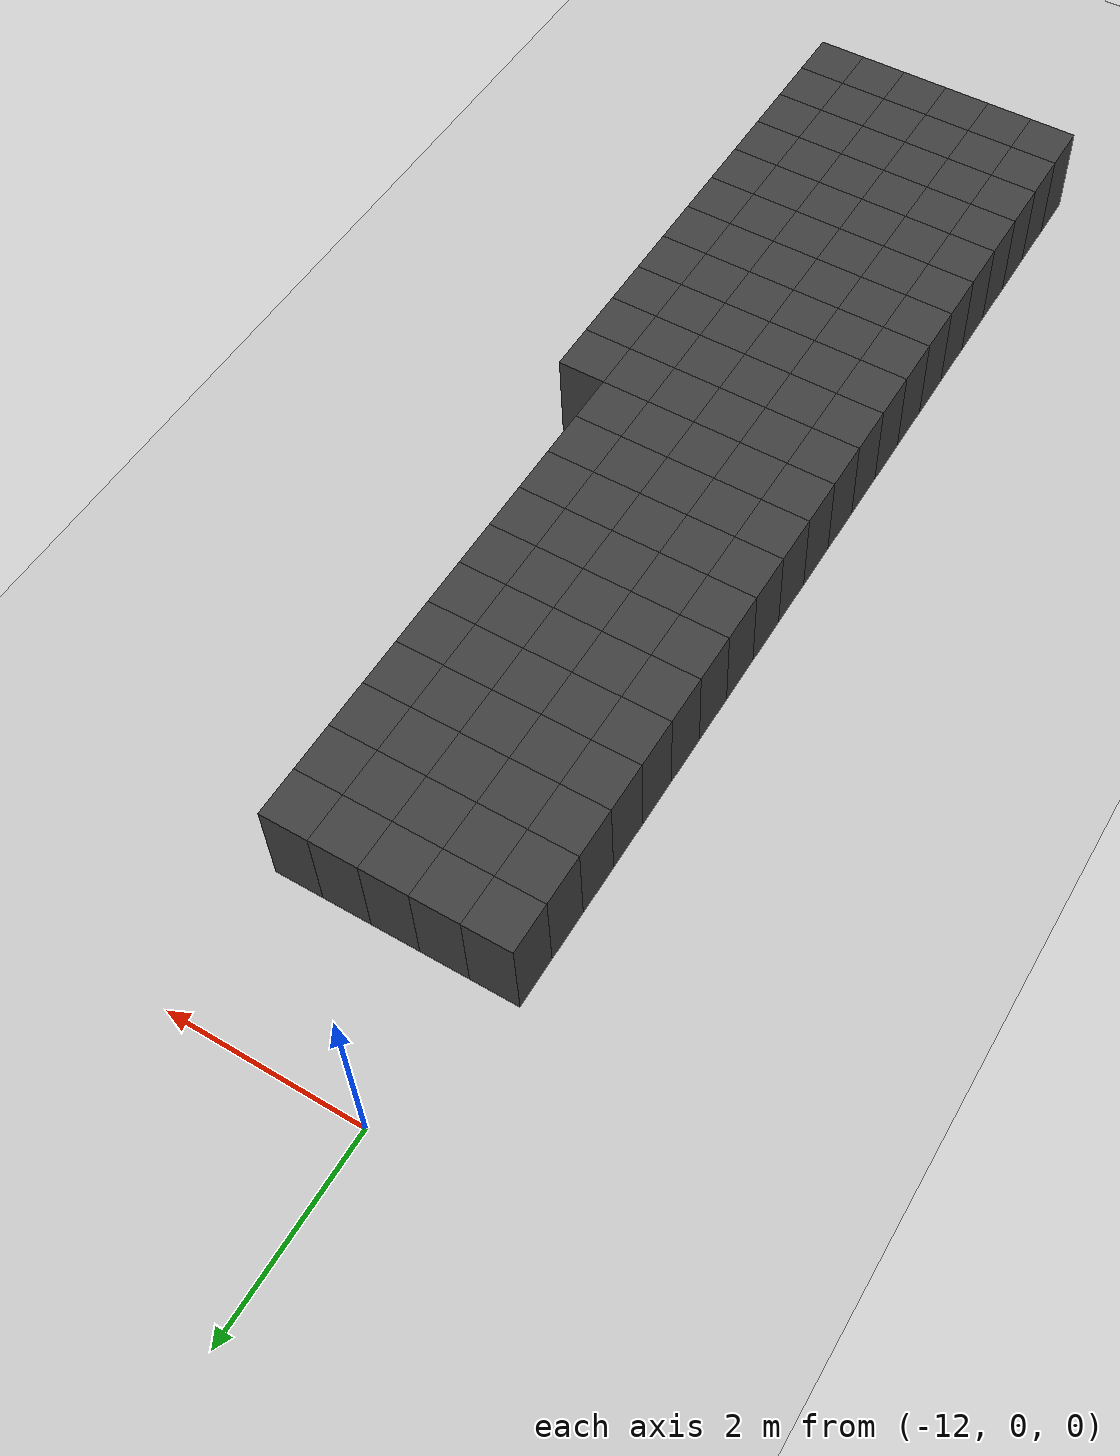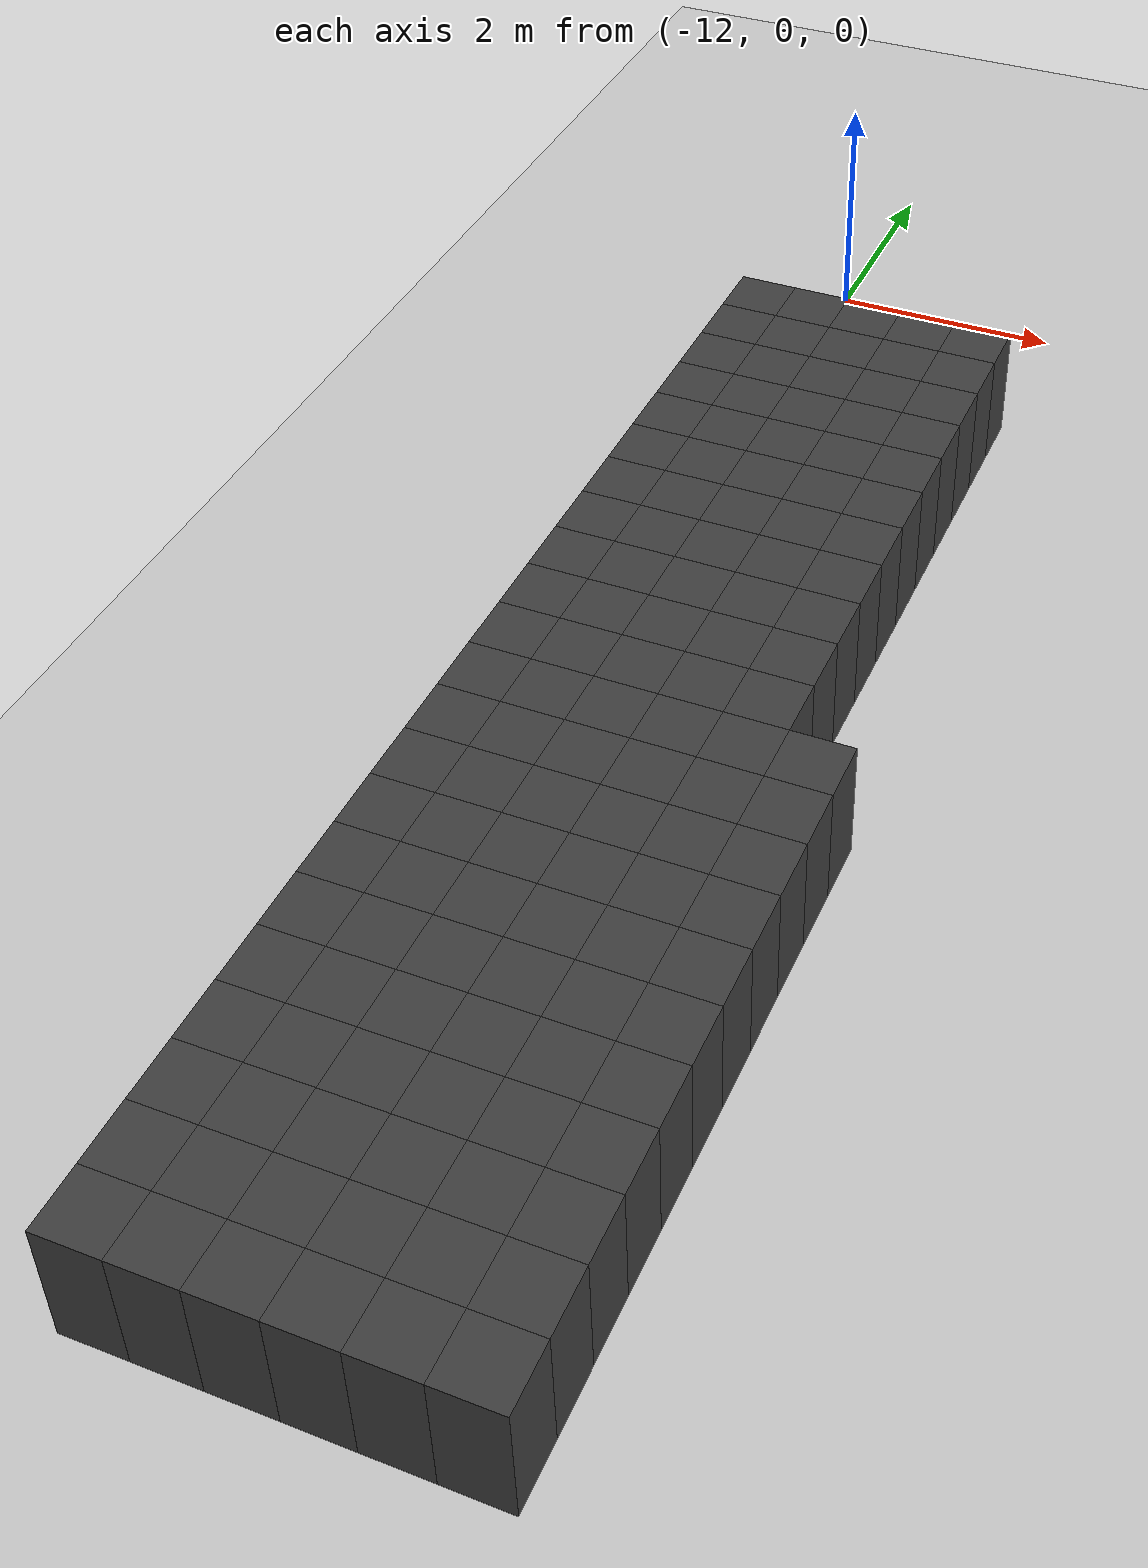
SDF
<sdf version="1.7">
 <world name="map_14888">
  <model name="ground_plane">
   <static>true</static>
   <link name="link">
    <collision name="collision">
     <geometry><plane><normal>0 0 1</normal><size>200 200</size></plane></geometry>
    </collision>
    <visual name="visual">
     <geometry><plane><normal>0 0 1</normal><size>200 200</size></plane></geometry>
     <material><ambient>0.8 0.8 0.8 1</ambient><diffuse>0.8 0.8 0.8 1</diffuse></material>
    </visual>
   </link>
  </model>
  <model name="maze_environment">
   <static>true</static>
   <link name="wall_989">
    <pose>-12.250 -1.750 0.500 0 0 0</pose>
    <collision name="col"><geometry><box><size>0.5 0.5 1.0</size></box></geometry></collision>
    <visual name="vis">
     <geometry><box><size>0.5 0.5 1.0</size></box></geometry>
     <material><ambient>0.15 0.15 0.15 1</ambient><diffuse>0.25 0.25 0.25 1</diffuse></material>
    </visual>
   </link>
   <link name="wall_990">
    <pose>-11.750 -1.750 0.500 0 0 0</pose>
    <collision name="col"><geometry><box><size>0.5 0.5 1.0</size></box></geometry></collision>
    <visual name="vis">
     <geometry><box><size>0.5 0.5 1.0</size></box></geometry>
     <material><ambient>0.15 0.15 0.15 1</ambient><diffuse>0.25 0.25 0.25 1</diffuse></material>
    </visual>
   </link>
   <link name="wall_991">
    <pose>-11.250 -1.750 0.500 0 0 0</pose>
    <collision name="col"><geometry><box><size>0.5 0.5 1.0</size></box></geometry></collision>
    <visual name="vis">
     <geometry><box><size>0.5 0.5 1.0</size></box></geometry>
     <material><ambient>0.15 0.15 0.15 1</ambient><diffuse>0.25 0.25 0.25 1</diffuse></material>
    </visual>
   </link>
   <link name="wall_992">
    <pose>-10.750 -1.750 0.500 0 0 0</pose>
    <collision name="col"><geometry><box><size>0.5 0.5 1.0</size></box></geometry></collision>
    <visual name="vis">
     <geometry><box><size>0.5 0.5 1.0</size></box></geometry>
     <material><ambient>0.15 0.15 0.15 1</ambient><diffuse>0.25 0.25 0.25 1</diffuse></material>
    </visual>
   </link>
   <link name="wall_993">
    <pose>-10.250 -1.750 0.500 0 0 0</pose>
    <collision name="col"><geometry><box><size>0.5 0.5 1.0</size></box></geometry></collision>
    <visual name="vis">
     <geometry><box><size>0.5 0.5 1.0</size></box></geometry>
     <material><ambient>0.15 0.15 0.15 1</ambient><diffuse>0.25 0.25 0.25 1</diffuse></material>
    </visual>
   </link>
   <link name="wall_1035">
    <pose>-12.250 -2.250 0.500 0 0 0</pose>
    <collision name="col"><geometry><box><size>0.5 0.5 1.0</size></box></geometry></collision>
    <visual name="vis">
     <geometry><box><size>0.5 0.5 1.0</size></box></geometry>
     <material><ambient>0.15 0.15 0.15 1</ambient><diffuse>0.25 0.25 0.25 1</diffuse></material>
    </visual>
   </link>
   <link name="wall_1036">
    <pose>-11.750 -2.250 0.500 0 0 0</pose>
    <collision name="col"><geometry><box><size>0.5 0.5 1.0</size></box></geometry></collision>
    <visual name="vis">
     <geometry><box><size>0.5 0.5 1.0</size></box></geometry>
     <material><ambient>0.15 0.15 0.15 1</ambient><diffuse>0.25 0.25 0.25 1</diffuse></material>
    </visual>
   </link>
   <link name="wall_1037">
    <pose>-11.250 -2.250 0.500 0 0 0</pose>
    <collision name="col"><geometry><box><size>0.5 0.5 1.0</size></box></geometry></collision>
    <visual name="vis">
     <geometry><box><size>0.5 0.5 1.0</size></box></geometry>
     <material><ambient>0.15 0.15 0.15 1</ambient><diffuse>0.25 0.25 0.25 1</diffuse></material>
    </visual>
   </link>
   <link name="wall_1038">
    <pose>-10.750 -2.250 0.500 0 0 0</pose>
    <collision name="col"><geometry><box><size>0.5 0.5 1.0</size></box></geometry></collision>
    <visual name="vis">
     <geometry><box><size>0.5 0.5 1.0</size></box></geometry>
     <material><ambient>0.15 0.15 0.15 1</ambient><diffuse>0.25 0.25 0.25 1</diffuse></material>
    </visual>
   </link>
   <link name="wall_1039">
    <pose>-10.250 -2.250 0.500 0 0 0</pose>
    <collision name="col"><geometry><box><size>0.5 0.5 1.0</size></box></geometry></collision>
    <visual name="vis">
     <geometry><box><size>0.5 0.5 1.0</size></box></geometry>
     <material><ambient>0.15 0.15 0.15 1</ambient><diffuse>0.25 0.25 0.25 1</diffuse></material>
    </visual>
   </link>
   <link name="wall_1081">
    <pose>-12.250 -2.750 0.500 0 0 0</pose>
    <collision name="col"><geometry><box><size>0.5 0.5 1.0</size></box></geometry></collision>
    <visual name="vis">
     <geometry><box><size>0.5 0.5 1.0</size></box></geometry>
     <material><ambient>0.15 0.15 0.15 1</ambient><diffuse>0.25 0.25 0.25 1</diffuse></material>
    </visual>
   </link>
   <link name="wall_1082">
    <pose>-11.750 -2.750 0.500 0 0 0</pose>
    <collision name="col"><geometry><box><size>0.5 0.5 1.0</size></box></geometry></collision>
    <visual name="vis">
     <geometry><box><size>0.5 0.5 1.0</size></box></geometry>
     <material><ambient>0.15 0.15 0.15 1</ambient><diffuse>0.25 0.25 0.25 1</diffuse></material>
    </visual>
   </link>
   <link name="wall_1083">
    <pose>-11.250 -2.750 0.500 0 0 0</pose>
    <collision name="col"><geometry><box><size>0.5 0.5 1.0</size></box></geometry></collision>
    <visual name="vis">
     <geometry><box><size>0.5 0.5 1.0</size></box></geometry>
     <material><ambient>0.15 0.15 0.15 1</ambient><diffuse>0.25 0.25 0.25 1</diffuse></material>
    </visual>
   </link>
   <link name="wall_1084">
    <pose>-10.750 -2.750 0.500 0 0 0</pose>
    <collision name="col"><geometry><box><size>0.5 0.5 1.0</size></box></geometry></collision>
    <visual name="vis">
     <geometry><box><size>0.5 0.5 1.0</size></box></geometry>
     <material><ambient>0.15 0.15 0.15 1</ambient><diffuse>0.25 0.25 0.25 1</diffuse></material>
    </visual>
   </link>
   <link name="wall_1085">
    <pose>-10.250 -2.750 0.500 0 0 0</pose>
    <collision name="col"><geometry><box><size>0.5 0.5 1.0</size></box></geometry></collision>
    <visual name="vis">
     <geometry><box><size>0.5 0.5 1.0</size></box></geometry>
     <material><ambient>0.15 0.15 0.15 1</ambient><diffuse>0.25 0.25 0.25 1</diffuse></material>
    </visual>
   </link>
   <link name="wall_1130">
    <pose>-12.250 -3.250 0.500 0 0 0</pose>
    <collision name="col"><geometry><box><size>0.5 0.5 1.0</size></box></geometry></collision>
    <visual name="vis">
     <geometry><box><size>0.5 0.5 1.0</size></box></geometry>
     <material><ambient>0.15 0.15 0.15 1</ambient><diffuse>0.25 0.25 0.25 1</diffuse></material>
    </visual>
   </link>
   <link name="wall_1131">
    <pose>-11.750 -3.250 0.500 0 0 0</pose>
    <collision name="col"><geometry><box><size>0.5 0.5 1.0</size></box></geometry></collision>
    <visual name="vis">
     <geometry><box><size>0.5 0.5 1.0</size></box></geometry>
     <material><ambient>0.15 0.15 0.15 1</ambient><diffuse>0.25 0.25 0.25 1</diffuse></material>
    </visual>
   </link>
   <link name="wall_1132">
    <pose>-11.250 -3.250 0.500 0 0 0</pose>
    <collision name="col"><geometry><box><size>0.5 0.5 1.0</size></box></geometry></collision>
    <visual name="vis">
     <geometry><box><size>0.5 0.5 1.0</size></box></geometry>
     <material><ambient>0.15 0.15 0.15 1</ambient><diffuse>0.25 0.25 0.25 1</diffuse></material>
    </visual>
   </link>
   <link name="wall_1133">
    <pose>-10.750 -3.250 0.500 0 0 0</pose>
    <collision name="col"><geometry><box><size>0.5 0.5 1.0</size></box></geometry></collision>
    <visual name="vis">
     <geometry><box><size>0.5 0.5 1.0</size></box></geometry>
     <material><ambient>0.15 0.15 0.15 1</ambient><diffuse>0.25 0.25 0.25 1</diffuse></material>
    </visual>
   </link>
   <link name="wall_1134">
    <pose>-10.250 -3.250 0.500 0 0 0</pose>
    <collision name="col"><geometry><box><size>0.5 0.5 1.0</size></box></geometry></collision>
    <visual name="vis">
     <geometry><box><size>0.5 0.5 1.0</size></box></geometry>
     <material><ambient>0.15 0.15 0.15 1</ambient><diffuse>0.25 0.25 0.25 1</diffuse></material>
    </visual>
   </link>
   <link name="wall_1179">
    <pose>-12.250 -3.750 0.500 0 0 0</pose>
    <collision name="col"><geometry><box><size>0.5 0.5 1.0</size></box></geometry></collision>
    <visual name="vis">
     <geometry><box><size>0.5 0.5 1.0</size></box></geometry>
     <material><ambient>0.15 0.15 0.15 1</ambient><diffuse>0.25 0.25 0.25 1</diffuse></material>
    </visual>
   </link>
   <link name="wall_1180">
    <pose>-11.750 -3.750 0.500 0 0 0</pose>
    <collision name="col"><geometry><box><size>0.5 0.5 1.0</size></box></geometry></collision>
    <visual name="vis">
     <geometry><box><size>0.5 0.5 1.0</size></box></geometry>
     <material><ambient>0.15 0.15 0.15 1</ambient><diffuse>0.25 0.25 0.25 1</diffuse></material>
    </visual>
   </link>
   <link name="wall_1181">
    <pose>-11.250 -3.750 0.500 0 0 0</pose>
    <collision name="col"><geometry><box><size>0.5 0.5 1.0</size></box></geometry></collision>
    <visual name="vis">
     <geometry><box><size>0.5 0.5 1.0</size></box></geometry>
     <material><ambient>0.15 0.15 0.15 1</ambient><diffuse>0.25 0.25 0.25 1</diffuse></material>
    </visual>
   </link>
   <link name="wall_1182">
    <pose>-10.750 -3.750 0.500 0 0 0</pose>
    <collision name="col"><geometry><box><size>0.5 0.5 1.0</size></box></geometry></collision>
    <visual name="vis">
     <geometry><box><size>0.5 0.5 1.0</size></box></geometry>
     <material><ambient>0.15 0.15 0.15 1</ambient><diffuse>0.25 0.25 0.25 1</diffuse></material>
    </visual>
   </link>
   <link name="wall_1183">
    <pose>-10.250 -3.750 0.500 0 0 0</pose>
    <collision name="col"><geometry><box><size>0.5 0.5 1.0</size></box></geometry></collision>
    <visual name="vis">
     <geometry><box><size>0.5 0.5 1.0</size></box></geometry>
     <material><ambient>0.15 0.15 0.15 1</ambient><diffuse>0.25 0.25 0.25 1</diffuse></material>
    </visual>
   </link>
   <link name="wall_1228">
    <pose>-12.250 -4.250 0.500 0 0 0</pose>
    <collision name="col"><geometry><box><size>0.5 0.5 1.0</size></box></geometry></collision>
    <visual name="vis">
     <geometry><box><size>0.5 0.5 1.0</size></box></geometry>
     <material><ambient>0.15 0.15 0.15 1</ambient><diffuse>0.25 0.25 0.25 1</diffuse></material>
    </visual>
   </link>
   <link name="wall_1229">
    <pose>-11.750 -4.250 0.500 0 0 0</pose>
    <collision name="col"><geometry><box><size>0.5 0.5 1.0</size></box></geometry></collision>
    <visual name="vis">
     <geometry><box><size>0.5 0.5 1.0</size></box></geometry>
     <material><ambient>0.15 0.15 0.15 1</ambient><diffuse>0.25 0.25 0.25 1</diffuse></material>
    </visual>
   </link>
   <link name="wall_1230">
    <pose>-11.250 -4.250 0.500 0 0 0</pose>
    <collision name="col"><geometry><box><size>0.5 0.5 1.0</size></box></geometry></collision>
    <visual name="vis">
     <geometry><box><size>0.5 0.5 1.0</size></box></geometry>
     <material><ambient>0.15 0.15 0.15 1</ambient><diffuse>0.25 0.25 0.25 1</diffuse></material>
    </visual>
   </link>
   <link name="wall_1231">
    <pose>-10.750 -4.250 0.500 0 0 0</pose>
    <collision name="col"><geometry><box><size>0.5 0.5 1.0</size></box></geometry></collision>
    <visual name="vis">
     <geometry><box><size>0.5 0.5 1.0</size></box></geometry>
     <material><ambient>0.15 0.15 0.15 1</ambient><diffuse>0.25 0.25 0.25 1</diffuse></material>
    </visual>
   </link>
   <link name="wall_1232">
    <pose>-10.250 -4.250 0.500 0 0 0</pose>
    <collision name="col"><geometry><box><size>0.5 0.5 1.0</size></box></geometry></collision>
    <visual name="vis">
     <geometry><box><size>0.5 0.5 1.0</size></box></geometry>
     <material><ambient>0.15 0.15 0.15 1</ambient><diffuse>0.25 0.25 0.25 1</diffuse></material>
    </visual>
   </link>
   <link name="wall_1262">
    <pose>-12.250 -4.750 0.500 0 0 0</pose>
    <collision name="col"><geometry><box><size>0.5 0.5 1.0</size></box></geometry></collision>
    <visual name="vis">
     <geometry><box><size>0.5 0.5 1.0</size></box></geometry>
     <material><ambient>0.15 0.15 0.15 1</ambient><diffuse>0.25 0.25 0.25 1</diffuse></material>
    </visual>
   </link>
   <link name="wall_1263">
    <pose>-11.750 -4.750 0.500 0 0 0</pose>
    <collision name="col"><geometry><box><size>0.5 0.5 1.0</size></box></geometry></collision>
    <visual name="vis">
     <geometry><box><size>0.5 0.5 1.0</size></box></geometry>
     <material><ambient>0.15 0.15 0.15 1</ambient><diffuse>0.25 0.25 0.25 1</diffuse></material>
    </visual>
   </link>
   <link name="wall_1264">
    <pose>-11.250 -4.750 0.500 0 0 0</pose>
    <collision name="col"><geometry><box><size>0.5 0.5 1.0</size></box></geometry></collision>
    <visual name="vis">
     <geometry><box><size>0.5 0.5 1.0</size></box></geometry>
     <material><ambient>0.15 0.15 0.15 1</ambient><diffuse>0.25 0.25 0.25 1</diffuse></material>
    </visual>
   </link>
   <link name="wall_1265">
    <pose>-10.750 -4.750 0.500 0 0 0</pose>
    <collision name="col"><geometry><box><size>0.5 0.5 1.0</size></box></geometry></collision>
    <visual name="vis">
     <geometry><box><size>0.5 0.5 1.0</size></box></geometry>
     <material><ambient>0.15 0.15 0.15 1</ambient><diffuse>0.25 0.25 0.25 1</diffuse></material>
    </visual>
   </link>
   <link name="wall_1266">
    <pose>-10.250 -4.750 0.500 0 0 0</pose>
    <collision name="col"><geometry><box><size>0.5 0.5 1.0</size></box></geometry></collision>
    <visual name="vis">
     <geometry><box><size>0.5 0.5 1.0</size></box></geometry>
     <material><ambient>0.15 0.15 0.15 1</ambient><diffuse>0.25 0.25 0.25 1</diffuse></material>
    </visual>
   </link>
   <link name="wall_1296">
    <pose>-12.250 -5.250 0.500 0 0 0</pose>
    <collision name="col"><geometry><box><size>0.5 0.5 1.0</size></box></geometry></collision>
    <visual name="vis">
     <geometry><box><size>0.5 0.5 1.0</size></box></geometry>
     <material><ambient>0.15 0.15 0.15 1</ambient><diffuse>0.25 0.25 0.25 1</diffuse></material>
    </visual>
   </link>
   <link name="wall_1297">
    <pose>-11.750 -5.250 0.500 0 0 0</pose>
    <collision name="col"><geometry><box><size>0.5 0.5 1.0</size></box></geometry></collision>
    <visual name="vis">
     <geometry><box><size>0.5 0.5 1.0</size></box></geometry>
     <material><ambient>0.15 0.15 0.15 1</ambient><diffuse>0.25 0.25 0.25 1</diffuse></material>
    </visual>
   </link>
   <link name="wall_1298">
    <pose>-11.250 -5.250 0.500 0 0 0</pose>
    <collision name="col"><geometry><box><size>0.5 0.5 1.0</size></box></geometry></collision>
    <visual name="vis">
     <geometry><box><size>0.5 0.5 1.0</size></box></geometry>
     <material><ambient>0.15 0.15 0.15 1</ambient><diffuse>0.25 0.25 0.25 1</diffuse></material>
    </visual>
   </link>
   <link name="wall_1299">
    <pose>-10.750 -5.250 0.500 0 0 0</pose>
    <collision name="col"><geometry><box><size>0.5 0.5 1.0</size></box></geometry></collision>
    <visual name="vis">
     <geometry><box><size>0.5 0.5 1.0</size></box></geometry>
     <material><ambient>0.15 0.15 0.15 1</ambient><diffuse>0.25 0.25 0.25 1</diffuse></material>
    </visual>
   </link>
   <link name="wall_1300">
    <pose>-10.250 -5.250 0.500 0 0 0</pose>
    <collision name="col"><geometry><box><size>0.5 0.5 1.0</size></box></geometry></collision>
    <visual name="vis">
     <geometry><box><size>0.5 0.5 1.0</size></box></geometry>
     <material><ambient>0.15 0.15 0.15 1</ambient><diffuse>0.25 0.25 0.25 1</diffuse></material>
    </visual>
   </link>
   <link name="wall_1320">
    <pose>-12.250 -5.750 0.500 0 0 0</pose>
    <collision name="col"><geometry><box><size>0.5 0.5 1.0</size></box></geometry></collision>
    <visual name="vis">
     <geometry><box><size>0.5 0.5 1.0</size></box></geometry>
     <material><ambient>0.15 0.15 0.15 1</ambient><diffuse>0.25 0.25 0.25 1</diffuse></material>
    </visual>
   </link>
   <link name="wall_1321">
    <pose>-11.750 -5.750 0.500 0 0 0</pose>
    <collision name="col"><geometry><box><size>0.5 0.5 1.0</size></box></geometry></collision>
    <visual name="vis">
     <geometry><box><size>0.5 0.5 1.0</size></box></geometry>
     <material><ambient>0.15 0.15 0.15 1</ambient><diffuse>0.25 0.25 0.25 1</diffuse></material>
    </visual>
   </link>
   <link name="wall_1322">
    <pose>-11.250 -5.750 0.500 0 0 0</pose>
    <collision name="col"><geometry><box><size>0.5 0.5 1.0</size></box></geometry></collision>
    <visual name="vis">
     <geometry><box><size>0.5 0.5 1.0</size></box></geometry>
     <material><ambient>0.15 0.15 0.15 1</ambient><diffuse>0.25 0.25 0.25 1</diffuse></material>
    </visual>
   </link>
   <link name="wall_1323">
    <pose>-10.750 -5.750 0.500 0 0 0</pose>
    <collision name="col"><geometry><box><size>0.5 0.5 1.0</size></box></geometry></collision>
    <visual name="vis">
     <geometry><box><size>0.5 0.5 1.0</size></box></geometry>
     <material><ambient>0.15 0.15 0.15 1</ambient><diffuse>0.25 0.25 0.25 1</diffuse></material>
    </visual>
   </link>
   <link name="wall_1324">
    <pose>-10.250 -5.750 0.500 0 0 0</pose>
    <collision name="col"><geometry><box><size>0.5 0.5 1.0</size></box></geometry></collision>
    <visual name="vis">
     <geometry><box><size>0.5 0.5 1.0</size></box></geometry>
     <material><ambient>0.15 0.15 0.15 1</ambient><diffuse>0.25 0.25 0.25 1</diffuse></material>
    </visual>
   </link>
   <link name="wall_1346">
    <pose>-12.250 -6.250 0.500 0 0 0</pose>
    <collision name="col"><geometry><box><size>0.5 0.5 1.0</size></box></geometry></collision>
    <visual name="vis">
     <geometry><box><size>0.5 0.5 1.0</size></box></geometry>
     <material><ambient>0.15 0.15 0.15 1</ambient><diffuse>0.25 0.25 0.25 1</diffuse></material>
    </visual>
   </link>
   <link name="wall_1347">
    <pose>-11.750 -6.250 0.500 0 0 0</pose>
    <collision name="col"><geometry><box><size>0.5 0.5 1.0</size></box></geometry></collision>
    <visual name="vis">
     <geometry><box><size>0.5 0.5 1.0</size></box></geometry>
     <material><ambient>0.15 0.15 0.15 1</ambient><diffuse>0.25 0.25 0.25 1</diffuse></material>
    </visual>
   </link>
   <link name="wall_1348">
    <pose>-11.250 -6.250 0.500 0 0 0</pose>
    <collision name="col"><geometry><box><size>0.5 0.5 1.0</size></box></geometry></collision>
    <visual name="vis">
     <geometry><box><size>0.5 0.5 1.0</size></box></geometry>
     <material><ambient>0.15 0.15 0.15 1</ambient><diffuse>0.25 0.25 0.25 1</diffuse></material>
    </visual>
   </link>
   <link name="wall_1349">
    <pose>-10.750 -6.250 0.500 0 0 0</pose>
    <collision name="col"><geometry><box><size>0.5 0.5 1.0</size></box></geometry></collision>
    <visual name="vis">
     <geometry><box><size>0.5 0.5 1.0</size></box></geometry>
     <material><ambient>0.15 0.15 0.15 1</ambient><diffuse>0.25 0.25 0.25 1</diffuse></material>
    </visual>
   </link>
   <link name="wall_1350">
    <pose>-10.250 -6.250 0.500 0 0 0</pose>
    <collision name="col"><geometry><box><size>0.5 0.5 1.0</size></box></geometry></collision>
    <visual name="vis">
     <geometry><box><size>0.5 0.5 1.0</size></box></geometry>
     <material><ambient>0.15 0.15 0.15 1</ambient><diffuse>0.25 0.25 0.25 1</diffuse></material>
    </visual>
   </link>
   <link name="wall_1372">
    <pose>-12.250 -6.750 0.500 0 0 0</pose>
    <collision name="col"><geometry><box><size>0.5 0.5 1.0</size></box></geometry></collision>
    <visual name="vis">
     <geometry><box><size>0.5 0.5 1.0</size></box></geometry>
     <material><ambient>0.15 0.15 0.15 1</ambient><diffuse>0.25 0.25 0.25 1</diffuse></material>
    </visual>
   </link>
   <link name="wall_1373">
    <pose>-11.750 -6.750 0.500 0 0 0</pose>
    <collision name="col"><geometry><box><size>0.5 0.5 1.0</size></box></geometry></collision>
    <visual name="vis">
     <geometry><box><size>0.5 0.5 1.0</size></box></geometry>
     <material><ambient>0.15 0.15 0.15 1</ambient><diffuse>0.25 0.25 0.25 1</diffuse></material>
    </visual>
   </link>
   <link name="wall_1374">
    <pose>-11.250 -6.750 0.500 0 0 0</pose>
    <collision name="col"><geometry><box><size>0.5 0.5 1.0</size></box></geometry></collision>
    <visual name="vis">
     <geometry><box><size>0.5 0.5 1.0</size></box></geometry>
     <material><ambient>0.15 0.15 0.15 1</ambient><diffuse>0.25 0.25 0.25 1</diffuse></material>
    </visual>
   </link>
   <link name="wall_1375">
    <pose>-10.750 -6.750 0.500 0 0 0</pose>
    <collision name="col"><geometry><box><size>0.5 0.5 1.0</size></box></geometry></collision>
    <visual name="vis">
     <geometry><box><size>0.5 0.5 1.0</size></box></geometry>
     <material><ambient>0.15 0.15 0.15 1</ambient><diffuse>0.25 0.25 0.25 1</diffuse></material>
    </visual>
   </link>
   <link name="wall_1376">
    <pose>-10.250 -6.750 0.500 0 0 0</pose>
    <collision name="col"><geometry><box><size>0.5 0.5 1.0</size></box></geometry></collision>
    <visual name="vis">
     <geometry><box><size>0.5 0.5 1.0</size></box></geometry>
     <material><ambient>0.15 0.15 0.15 1</ambient><diffuse>0.25 0.25 0.25 1</diffuse></material>
    </visual>
   </link>
   <link name="wall_1406">
    <pose>-12.250 -7.250 0.500 0 0 0</pose>
    <collision name="col"><geometry><box><size>0.5 0.5 1.0</size></box></geometry></collision>
    <visual name="vis">
     <geometry><box><size>0.5 0.5 1.0</size></box></geometry>
     <material><ambient>0.15 0.15 0.15 1</ambient><diffuse>0.25 0.25 0.25 1</diffuse></material>
    </visual>
   </link>
   <link name="wall_1407">
    <pose>-11.750 -7.250 0.500 0 0 0</pose>
    <collision name="col"><geometry><box><size>0.5 0.5 1.0</size></box></geometry></collision>
    <visual name="vis">
     <geometry><box><size>0.5 0.5 1.0</size></box></geometry>
     <material><ambient>0.15 0.15 0.15 1</ambient><diffuse>0.25 0.25 0.25 1</diffuse></material>
    </visual>
   </link>
   <link name="wall_1408">
    <pose>-11.250 -7.250 0.500 0 0 0</pose>
    <collision name="col"><geometry><box><size>0.5 0.5 1.0</size></box></geometry></collision>
    <visual name="vis">
     <geometry><box><size>0.5 0.5 1.0</size></box></geometry>
     <material><ambient>0.15 0.15 0.15 1</ambient><diffuse>0.25 0.25 0.25 1</diffuse></material>
    </visual>
   </link>
   <link name="wall_1409">
    <pose>-10.750 -7.250 0.500 0 0 0</pose>
    <collision name="col"><geometry><box><size>0.5 0.5 1.0</size></box></geometry></collision>
    <visual name="vis">
     <geometry><box><size>0.5 0.5 1.0</size></box></geometry>
     <material><ambient>0.15 0.15 0.15 1</ambient><diffuse>0.25 0.25 0.25 1</diffuse></material>
    </visual>
   </link>
   <link name="wall_1410">
    <pose>-10.250 -7.250 0.500 0 0 0</pose>
    <collision name="col"><geometry><box><size>0.5 0.5 1.0</size></box></geometry></collision>
    <visual name="vis">
     <geometry><box><size>0.5 0.5 1.0</size></box></geometry>
     <material><ambient>0.15 0.15 0.15 1</ambient><diffuse>0.25 0.25 0.25 1</diffuse></material>
    </visual>
   </link>
   <link name="wall_1411">
    <pose>-9.750 -7.250 0.500 0 0 0</pose>
    <collision name="col"><geometry><box><size>0.5 0.5 1.0</size></box></geometry></collision>
    <visual name="vis">
     <geometry><box><size>0.5 0.5 1.0</size></box></geometry>
     <material><ambient>0.15 0.15 0.15 1</ambient><diffuse>0.25 0.25 0.25 1</diffuse></material>
    </visual>
   </link>
   <link name="wall_1436">
    <pose>-12.250 -7.750 0.500 0 0 0</pose>
    <collision name="col"><geometry><box><size>0.5 0.5 1.0</size></box></geometry></collision>
    <visual name="vis">
     <geometry><box><size>0.5 0.5 1.0</size></box></geometry>
     <material><ambient>0.15 0.15 0.15 1</ambient><diffuse>0.25 0.25 0.25 1</diffuse></material>
    </visual>
   </link>
   <link name="wall_1437">
    <pose>-11.750 -7.750 0.500 0 0 0</pose>
    <collision name="col"><geometry><box><size>0.5 0.5 1.0</size></box></geometry></collision>
    <visual name="vis">
     <geometry><box><size>0.5 0.5 1.0</size></box></geometry>
     <material><ambient>0.15 0.15 0.15 1</ambient><diffuse>0.25 0.25 0.25 1</diffuse></material>
    </visual>
   </link>
   <link name="wall_1438">
    <pose>-11.250 -7.750 0.500 0 0 0</pose>
    <collision name="col"><geometry><box><size>0.5 0.5 1.0</size></box></geometry></collision>
    <visual name="vis">
     <geometry><box><size>0.5 0.5 1.0</size></box></geometry>
     <material><ambient>0.15 0.15 0.15 1</ambient><diffuse>0.25 0.25 0.25 1</diffuse></material>
    </visual>
   </link>
   <link name="wall_1439">
    <pose>-10.750 -7.750 0.500 0 0 0</pose>
    <collision name="col"><geometry><box><size>0.5 0.5 1.0</size></box></geometry></collision>
    <visual name="vis">
     <geometry><box><size>0.5 0.5 1.0</size></box></geometry>
     <material><ambient>0.15 0.15 0.15 1</ambient><diffuse>0.25 0.25 0.25 1</diffuse></material>
    </visual>
   </link>
   <link name="wall_1440">
    <pose>-10.250 -7.750 0.500 0 0 0</pose>
    <collision name="col"><geometry><box><size>0.5 0.5 1.0</size></box></geometry></collision>
    <visual name="vis">
     <geometry><box><size>0.5 0.5 1.0</size></box></geometry>
     <material><ambient>0.15 0.15 0.15 1</ambient><diffuse>0.25 0.25 0.25 1</diffuse></material>
    </visual>
   </link>
   <link name="wall_1441">
    <pose>-9.750 -7.750 0.500 0 0 0</pose>
    <collision name="col"><geometry><box><size>0.5 0.5 1.0</size></box></geometry></collision>
    <visual name="vis">
     <geometry><box><size>0.5 0.5 1.0</size></box></geometry>
     <material><ambient>0.15 0.15 0.15 1</ambient><diffuse>0.25 0.25 0.25 1</diffuse></material>
    </visual>
   </link>
   <link name="wall_1472">
    <pose>-12.250 -8.250 0.500 0 0 0</pose>
    <collision name="col"><geometry><box><size>0.5 0.5 1.0</size></box></geometry></collision>
    <visual name="vis">
     <geometry><box><size>0.5 0.5 1.0</size></box></geometry>
     <material><ambient>0.15 0.15 0.15 1</ambient><diffuse>0.25 0.25 0.25 1</diffuse></material>
    </visual>
   </link>
   <link name="wall_1473">
    <pose>-11.750 -8.250 0.500 0 0 0</pose>
    <collision name="col"><geometry><box><size>0.5 0.5 1.0</size></box></geometry></collision>
    <visual name="vis">
     <geometry><box><size>0.5 0.5 1.0</size></box></geometry>
     <material><ambient>0.15 0.15 0.15 1</ambient><diffuse>0.25 0.25 0.25 1</diffuse></material>
    </visual>
   </link>
   <link name="wall_1474">
    <pose>-11.250 -8.250 0.500 0 0 0</pose>
    <collision name="col"><geometry><box><size>0.5 0.5 1.0</size></box></geometry></collision>
    <visual name="vis">
     <geometry><box><size>0.5 0.5 1.0</size></box></geometry>
     <material><ambient>0.15 0.15 0.15 1</ambient><diffuse>0.25 0.25 0.25 1</diffuse></material>
    </visual>
   </link>
   <link name="wall_1475">
    <pose>-10.750 -8.250 0.500 0 0 0</pose>
    <collision name="col"><geometry><box><size>0.5 0.5 1.0</size></box></geometry></collision>
    <visual name="vis">
     <geometry><box><size>0.5 0.5 1.0</size></box></geometry>
     <material><ambient>0.15 0.15 0.15 1</ambient><diffuse>0.25 0.25 0.25 1</diffuse></material>
    </visual>
   </link>
   <link name="wall_1476">
    <pose>-10.250 -8.250 0.500 0 0 0</pose>
    <collision name="col"><geometry><box><size>0.5 0.5 1.0</size></box></geometry></collision>
    <visual name="vis">
     <geometry><box><size>0.5 0.5 1.0</size></box></geometry>
     <material><ambient>0.15 0.15 0.15 1</ambient><diffuse>0.25 0.25 0.25 1</diffuse></material>
    </visual>
   </link>
   <link name="wall_1477">
    <pose>-9.750 -8.250 0.500 0 0 0</pose>
    <collision name="col"><geometry><box><size>0.5 0.5 1.0</size></box></geometry></collision>
    <visual name="vis">
     <geometry><box><size>0.5 0.5 1.0</size></box></geometry>
     <material><ambient>0.15 0.15 0.15 1</ambient><diffuse>0.25 0.25 0.25 1</diffuse></material>
    </visual>
   </link>
   <link name="wall_1505">
    <pose>-12.250 -8.750 0.500 0 0 0</pose>
    <collision name="col"><geometry><box><size>0.5 0.5 1.0</size></box></geometry></collision>
    <visual name="vis">
     <geometry><box><size>0.5 0.5 1.0</size></box></geometry>
     <material><ambient>0.15 0.15 0.15 1</ambient><diffuse>0.25 0.25 0.25 1</diffuse></material>
    </visual>
   </link>
   <link name="wall_1506">
    <pose>-11.750 -8.750 0.500 0 0 0</pose>
    <collision name="col"><geometry><box><size>0.5 0.5 1.0</size></box></geometry></collision>
    <visual name="vis">
     <geometry><box><size>0.5 0.5 1.0</size></box></geometry>
     <material><ambient>0.15 0.15 0.15 1</ambient><diffuse>0.25 0.25 0.25 1</diffuse></material>
    </visual>
   </link>
   <link name="wall_1507">
    <pose>-11.250 -8.750 0.500 0 0 0</pose>
    <collision name="col"><geometry><box><size>0.5 0.5 1.0</size></box></geometry></collision>
    <visual name="vis">
     <geometry><box><size>0.5 0.5 1.0</size></box></geometry>
     <material><ambient>0.15 0.15 0.15 1</ambient><diffuse>0.25 0.25 0.25 1</diffuse></material>
    </visual>
   </link>
   <link name="wall_1508">
    <pose>-10.750 -8.750 0.500 0 0 0</pose>
    <collision name="col"><geometry><box><size>0.5 0.5 1.0</size></box></geometry></collision>
    <visual name="vis">
     <geometry><box><size>0.5 0.5 1.0</size></box></geometry>
     <material><ambient>0.15 0.15 0.15 1</ambient><diffuse>0.25 0.25 0.25 1</diffuse></material>
    </visual>
   </link>
   <link name="wall_1509">
    <pose>-10.250 -8.750 0.500 0 0 0</pose>
    <collision name="col"><geometry><box><size>0.5 0.5 1.0</size></box></geometry></collision>
    <visual name="vis">
     <geometry><box><size>0.5 0.5 1.0</size></box></geometry>
     <material><ambient>0.15 0.15 0.15 1</ambient><diffuse>0.25 0.25 0.25 1</diffuse></material>
    </visual>
   </link>
   <link name="wall_1510">
    <pose>-9.750 -8.750 0.500 0 0 0</pose>
    <collision name="col"><geometry><box><size>0.5 0.5 1.0</size></box></geometry></collision>
    <visual name="vis">
     <geometry><box><size>0.5 0.5 1.0</size></box></geometry>
     <material><ambient>0.15 0.15 0.15 1</ambient><diffuse>0.25 0.25 0.25 1</diffuse></material>
    </visual>
   </link>
   <link name="wall_1538">
    <pose>-12.250 -9.250 0.500 0 0 0</pose>
    <collision name="col"><geometry><box><size>0.5 0.5 1.0</size></box></geometry></collision>
    <visual name="vis">
     <geometry><box><size>0.5 0.5 1.0</size></box></geometry>
     <material><ambient>0.15 0.15 0.15 1</ambient><diffuse>0.25 0.25 0.25 1</diffuse></material>
    </visual>
   </link>
   <link name="wall_1539">
    <pose>-11.750 -9.250 0.500 0 0 0</pose>
    <collision name="col"><geometry><box><size>0.5 0.5 1.0</size></box></geometry></collision>
    <visual name="vis">
     <geometry><box><size>0.5 0.5 1.0</size></box></geometry>
     <material><ambient>0.15 0.15 0.15 1</ambient><diffuse>0.25 0.25 0.25 1</diffuse></material>
    </visual>
   </link>
   <link name="wall_1540">
    <pose>-11.250 -9.250 0.500 0 0 0</pose>
    <collision name="col"><geometry><box><size>0.5 0.5 1.0</size></box></geometry></collision>
    <visual name="vis">
     <geometry><box><size>0.5 0.5 1.0</size></box></geometry>
     <material><ambient>0.15 0.15 0.15 1</ambient><diffuse>0.25 0.25 0.25 1</diffuse></material>
    </visual>
   </link>
   <link name="wall_1541">
    <pose>-10.750 -9.250 0.500 0 0 0</pose>
    <collision name="col"><geometry><box><size>0.5 0.5 1.0</size></box></geometry></collision>
    <visual name="vis">
     <geometry><box><size>0.5 0.5 1.0</size></box></geometry>
     <material><ambient>0.15 0.15 0.15 1</ambient><diffuse>0.25 0.25 0.25 1</diffuse></material>
    </visual>
   </link>
   <link name="wall_1542">
    <pose>-10.250 -9.250 0.500 0 0 0</pose>
    <collision name="col"><geometry><box><size>0.5 0.5 1.0</size></box></geometry></collision>
    <visual name="vis">
     <geometry><box><size>0.5 0.5 1.0</size></box></geometry>
     <material><ambient>0.15 0.15 0.15 1</ambient><diffuse>0.25 0.25 0.25 1</diffuse></material>
    </visual>
   </link>
   <link name="wall_1543">
    <pose>-9.750 -9.250 0.500 0 0 0</pose>
    <collision name="col"><geometry><box><size>0.5 0.5 1.0</size></box></geometry></collision>
    <visual name="vis">
     <geometry><box><size>0.5 0.5 1.0</size></box></geometry>
     <material><ambient>0.15 0.15 0.15 1</ambient><diffuse>0.25 0.25 0.25 1</diffuse></material>
    </visual>
   </link>
   <link name="wall_1570">
    <pose>-12.250 -9.750 0.500 0 0 0</pose>
    <collision name="col"><geometry><box><size>0.5 0.5 1.0</size></box></geometry></collision>
    <visual name="vis">
     <geometry><box><size>0.5 0.5 1.0</size></box></geometry>
     <material><ambient>0.15 0.15 0.15 1</ambient><diffuse>0.25 0.25 0.25 1</diffuse></material>
    </visual>
   </link>
   <link name="wall_1571">
    <pose>-11.750 -9.750 0.500 0 0 0</pose>
    <collision name="col"><geometry><box><size>0.5 0.5 1.0</size></box></geometry></collision>
    <visual name="vis">
     <geometry><box><size>0.5 0.5 1.0</size></box></geometry>
     <material><ambient>0.15 0.15 0.15 1</ambient><diffuse>0.25 0.25 0.25 1</diffuse></material>
    </visual>
   </link>
   <link name="wall_1572">
    <pose>-11.250 -9.750 0.500 0 0 0</pose>
    <collision name="col"><geometry><box><size>0.5 0.5 1.0</size></box></geometry></collision>
    <visual name="vis">
     <geometry><box><size>0.5 0.5 1.0</size></box></geometry>
     <material><ambient>0.15 0.15 0.15 1</ambient><diffuse>0.25 0.25 0.25 1</diffuse></material>
    </visual>
   </link>
   <link name="wall_1573">
    <pose>-10.750 -9.750 0.500 0 0 0</pose>
    <collision name="col"><geometry><box><size>0.5 0.5 1.0</size></box></geometry></collision>
    <visual name="vis">
     <geometry><box><size>0.5 0.5 1.0</size></box></geometry>
     <material><ambient>0.15 0.15 0.15 1</ambient><diffuse>0.25 0.25 0.25 1</diffuse></material>
    </visual>
   </link>
   <link name="wall_1574">
    <pose>-10.250 -9.750 0.500 0 0 0</pose>
    <collision name="col"><geometry><box><size>0.5 0.5 1.0</size></box></geometry></collision>
    <visual name="vis">
     <geometry><box><size>0.5 0.5 1.0</size></box></geometry>
     <material><ambient>0.15 0.15 0.15 1</ambient><diffuse>0.25 0.25 0.25 1</diffuse></material>
    </visual>
   </link>
   <link name="wall_1575">
    <pose>-9.750 -9.750 0.500 0 0 0</pose>
    <collision name="col"><geometry><box><size>0.5 0.5 1.0</size></box></geometry></collision>
    <visual name="vis">
     <geometry><box><size>0.5 0.5 1.0</size></box></geometry>
     <material><ambient>0.15 0.15 0.15 1</ambient><diffuse>0.25 0.25 0.25 1</diffuse></material>
    </visual>
   </link>
   <link name="wall_1610">
    <pose>-12.250 -10.250 0.500 0 0 0</pose>
    <collision name="col"><geometry><box><size>0.5 0.5 1.0</size></box></geometry></collision>
    <visual name="vis">
     <geometry><box><size>0.5 0.5 1.0</size></box></geometry>
     <material><ambient>0.15 0.15 0.15 1</ambient><diffuse>0.25 0.25 0.25 1</diffuse></material>
    </visual>
   </link>
   <link name="wall_1611">
    <pose>-11.750 -10.250 0.500 0 0 0</pose>
    <collision name="col"><geometry><box><size>0.5 0.5 1.0</size></box></geometry></collision>
    <visual name="vis">
     <geometry><box><size>0.5 0.5 1.0</size></box></geometry>
     <material><ambient>0.15 0.15 0.15 1</ambient><diffuse>0.25 0.25 0.25 1</diffuse></material>
    </visual>
   </link>
   <link name="wall_1612">
    <pose>-11.250 -10.250 0.500 0 0 0</pose>
    <collision name="col"><geometry><box><size>0.5 0.5 1.0</size></box></geometry></collision>
    <visual name="vis">
     <geometry><box><size>0.5 0.5 1.0</size></box></geometry>
     <material><ambient>0.15 0.15 0.15 1</ambient><diffuse>0.25 0.25 0.25 1</diffuse></material>
    </visual>
   </link>
   <link name="wall_1613">
    <pose>-10.750 -10.250 0.500 0 0 0</pose>
    <collision name="col"><geometry><box><size>0.5 0.5 1.0</size></box></geometry></collision>
    <visual name="vis">
     <geometry><box><size>0.5 0.5 1.0</size></box></geometry>
     <material><ambient>0.15 0.15 0.15 1</ambient><diffuse>0.25 0.25 0.25 1</diffuse></material>
    </visual>
   </link>
   <link name="wall_1614">
    <pose>-10.250 -10.250 0.500 0 0 0</pose>
    <collision name="col"><geometry><box><size>0.5 0.5 1.0</size></box></geometry></collision>
    <visual name="vis">
     <geometry><box><size>0.5 0.5 1.0</size></box></geometry>
     <material><ambient>0.15 0.15 0.15 1</ambient><diffuse>0.25 0.25 0.25 1</diffuse></material>
    </visual>
   </link>
   <link name="wall_1615">
    <pose>-9.750 -10.250 0.500 0 0 0</pose>
    <collision name="col"><geometry><box><size>0.5 0.5 1.0</size></box></geometry></collision>
    <visual name="vis">
     <geometry><box><size>0.5 0.5 1.0</size></box></geometry>
     <material><ambient>0.15 0.15 0.15 1</ambient><diffuse>0.25 0.25 0.25 1</diffuse></material>
    </visual>
   </link>
   <link name="wall_1650">
    <pose>-12.250 -10.750 0.500 0 0 0</pose>
    <collision name="col"><geometry><box><size>0.5 0.5 1.0</size></box></geometry></collision>
    <visual name="vis">
     <geometry><box><size>0.5 0.5 1.0</size></box></geometry>
     <material><ambient>0.15 0.15 0.15 1</ambient><diffuse>0.25 0.25 0.25 1</diffuse></material>
    </visual>
   </link>
   <link name="wall_1651">
    <pose>-11.750 -10.750 0.500 0 0 0</pose>
    <collision name="col"><geometry><box><size>0.5 0.5 1.0</size></box></geometry></collision>
    <visual name="vis">
     <geometry><box><size>0.5 0.5 1.0</size></box></geometry>
     <material><ambient>0.15 0.15 0.15 1</ambient><diffuse>0.25 0.25 0.25 1</diffuse></material>
    </visual>
   </link>
   <link name="wall_1652">
    <pose>-11.250 -10.750 0.500 0 0 0</pose>
    <collision name="col"><geometry><box><size>0.5 0.5 1.0</size></box></geometry></collision>
    <visual name="vis">
     <geometry><box><size>0.5 0.5 1.0</size></box></geometry>
     <material><ambient>0.15 0.15 0.15 1</ambient><diffuse>0.25 0.25 0.25 1</diffuse></material>
    </visual>
   </link>
   <link name="wall_1653">
    <pose>-10.750 -10.750 0.500 0 0 0</pose>
    <collision name="col"><geometry><box><size>0.5 0.5 1.0</size></box></geometry></collision>
    <visual name="vis">
     <geometry><box><size>0.5 0.5 1.0</size></box></geometry>
     <material><ambient>0.15 0.15 0.15 1</ambient><diffuse>0.25 0.25 0.25 1</diffuse></material>
    </visual>
   </link>
   <link name="wall_1654">
    <pose>-10.250 -10.750 0.500 0 0 0</pose>
    <collision name="col"><geometry><box><size>0.5 0.5 1.0</size></box></geometry></collision>
    <visual name="vis">
     <geometry><box><size>0.5 0.5 1.0</size></box></geometry>
     <material><ambient>0.15 0.15 0.15 1</ambient><diffuse>0.25 0.25 0.25 1</diffuse></material>
    </visual>
   </link>
   <link name="wall_1655">
    <pose>-9.750 -10.750 0.500 0 0 0</pose>
    <collision name="col"><geometry><box><size>0.5 0.5 1.0</size></box></geometry></collision>
    <visual name="vis">
     <geometry><box><size>0.5 0.5 1.0</size></box></geometry>
     <material><ambient>0.15 0.15 0.15 1</ambient><diffuse>0.25 0.25 0.25 1</diffuse></material>
    </visual>
   </link>
   <link name="wall_1687">
    <pose>-12.250 -11.250 0.500 0 0 0</pose>
    <collision name="col"><geometry><box><size>0.5 0.5 1.0</size></box></geometry></collision>
    <visual name="vis">
     <geometry><box><size>0.5 0.5 1.0</size></box></geometry>
     <material><ambient>0.15 0.15 0.15 1</ambient><diffuse>0.25 0.25 0.25 1</diffuse></material>
    </visual>
   </link>
   <link name="wall_1688">
    <pose>-11.750 -11.250 0.500 0 0 0</pose>
    <collision name="col"><geometry><box><size>0.5 0.5 1.0</size></box></geometry></collision>
    <visual name="vis">
     <geometry><box><size>0.5 0.5 1.0</size></box></geometry>
     <material><ambient>0.15 0.15 0.15 1</ambient><diffuse>0.25 0.25 0.25 1</diffuse></material>
    </visual>
   </link>
   <link name="wall_1689">
    <pose>-11.250 -11.250 0.500 0 0 0</pose>
    <collision name="col"><geometry><box><size>0.5 0.5 1.0</size></box></geometry></collision>
    <visual name="vis">
     <geometry><box><size>0.5 0.5 1.0</size></box></geometry>
     <material><ambient>0.15 0.15 0.15 1</ambient><diffuse>0.25 0.25 0.25 1</diffuse></material>
    </visual>
   </link>
   <link name="wall_1690">
    <pose>-10.750 -11.250 0.500 0 0 0</pose>
    <collision name="col"><geometry><box><size>0.5 0.5 1.0</size></box></geometry></collision>
    <visual name="vis">
     <geometry><box><size>0.5 0.5 1.0</size></box></geometry>
     <material><ambient>0.15 0.15 0.15 1</ambient><diffuse>0.25 0.25 0.25 1</diffuse></material>
    </visual>
   </link>
   <link name="wall_1691">
    <pose>-10.250 -11.250 0.500 0 0 0</pose>
    <collision name="col"><geometry><box><size>0.5 0.5 1.0</size></box></geometry></collision>
    <visual name="vis">
     <geometry><box><size>0.5 0.5 1.0</size></box></geometry>
     <material><ambient>0.15 0.15 0.15 1</ambient><diffuse>0.25 0.25 0.25 1</diffuse></material>
    </visual>
   </link>
   <link name="wall_1692">
    <pose>-9.750 -11.250 0.500 0 0 0</pose>
    <collision name="col"><geometry><box><size>0.5 0.5 1.0</size></box></geometry></collision>
    <visual name="vis">
     <geometry><box><size>0.5 0.5 1.0</size></box></geometry>
     <material><ambient>0.15 0.15 0.15 1</ambient><diffuse>0.25 0.25 0.25 1</diffuse></material>
    </visual>
   </link>
   <link name="wall_1727">
    <pose>-12.250 -11.750 0.500 0 0 0</pose>
    <collision name="col"><geometry><box><size>0.5 0.5 1.0</size></box></geometry></collision>
    <visual name="vis">
     <geometry><box><size>0.5 0.5 1.0</size></box></geometry>
     <material><ambient>0.15 0.15 0.15 1</ambient><diffuse>0.25 0.25 0.25 1</diffuse></material>
    </visual>
   </link>
   <link name="wall_1728">
    <pose>-11.750 -11.750 0.500 0 0 0</pose>
    <collision name="col"><geometry><box><size>0.5 0.5 1.0</size></box></geometry></collision>
    <visual name="vis">
     <geometry><box><size>0.5 0.5 1.0</size></box></geometry>
     <material><ambient>0.15 0.15 0.15 1</ambient><diffuse>0.25 0.25 0.25 1</diffuse></material>
    </visual>
   </link>
   <link name="wall_1729">
    <pose>-11.250 -11.750 0.500 0 0 0</pose>
    <collision name="col"><geometry><box><size>0.5 0.5 1.0</size></box></geometry></collision>
    <visual name="vis">
     <geometry><box><size>0.5 0.5 1.0</size></box></geometry>
     <material><ambient>0.15 0.15 0.15 1</ambient><diffuse>0.25 0.25 0.25 1</diffuse></material>
    </visual>
   </link>
   <link name="wall_1730">
    <pose>-10.750 -11.750 0.500 0 0 0</pose>
    <collision name="col"><geometry><box><size>0.5 0.5 1.0</size></box></geometry></collision>
    <visual name="vis">
     <geometry><box><size>0.5 0.5 1.0</size></box></geometry>
     <material><ambient>0.15 0.15 0.15 1</ambient><diffuse>0.25 0.25 0.25 1</diffuse></material>
    </visual>
   </link>
   <link name="wall_1731">
    <pose>-10.250 -11.750 0.500 0 0 0</pose>
    <collision name="col"><geometry><box><size>0.5 0.5 1.0</size></box></geometry></collision>
    <visual name="vis">
     <geometry><box><size>0.5 0.5 1.0</size></box></geometry>
     <material><ambient>0.15 0.15 0.15 1</ambient><diffuse>0.25 0.25 0.25 1</diffuse></material>
    </visual>
   </link>
   <link name="wall_1732">
    <pose>-9.750 -11.750 0.500 0 0 0</pose>
    <collision name="col"><geometry><box><size>0.5 0.5 1.0</size></box></geometry></collision>
    <visual name="vis">
     <geometry><box><size>0.5 0.5 1.0</size></box></geometry>
     <material><ambient>0.15 0.15 0.15 1</ambient><diffuse>0.25 0.25 0.25 1</diffuse></material>
    </visual>
   </link>
   <link name="wall_1774">
    <pose>-12.250 -12.250 0.500 0 0 0</pose>
    <collision name="col"><geometry><box><size>0.5 0.5 1.0</size></box></geometry></collision>
    <visual name="vis">
     <geometry><box><size>0.5 0.5 1.0</size></box></geometry>
     <material><ambient>0.15 0.15 0.15 1</ambient><diffuse>0.25 0.25 0.25 1</diffuse></material>
    </visual>
   </link>
   <link name="wall_1775">
    <pose>-11.750 -12.250 0.500 0 0 0</pose>
    <collision name="col"><geometry><box><size>0.5 0.5 1.0</size></box></geometry></collision>
    <visual name="vis">
     <geometry><box><size>0.5 0.5 1.0</size></box></geometry>
     <material><ambient>0.15 0.15 0.15 1</ambient><diffuse>0.25 0.25 0.25 1</diffuse></material>
    </visual>
   </link>
   <link name="wall_1776">
    <pose>-11.250 -12.250 0.500 0 0 0</pose>
    <collision name="col"><geometry><box><size>0.5 0.5 1.0</size></box></geometry></collision>
    <visual name="vis">
     <geometry><box><size>0.5 0.5 1.0</size></box></geometry>
     <material><ambient>0.15 0.15 0.15 1</ambient><diffuse>0.25 0.25 0.25 1</diffuse></material>
    </visual>
   </link>
   <link name="wall_1777">
    <pose>-10.750 -12.250 0.500 0 0 0</pose>
    <collision name="col"><geometry><box><size>0.5 0.5 1.0</size></box></geometry></collision>
    <visual name="vis">
     <geometry><box><size>0.5 0.5 1.0</size></box></geometry>
     <material><ambient>0.15 0.15 0.15 1</ambient><diffuse>0.25 0.25 0.25 1</diffuse></material>
    </visual>
   </link>
   <link name="wall_1778">
    <pose>-10.250 -12.250 0.500 0 0 0</pose>
    <collision name="col"><geometry><box><size>0.5 0.5 1.0</size></box></geometry></collision>
    <visual name="vis">
     <geometry><box><size>0.5 0.5 1.0</size></box></geometry>
     <material><ambient>0.15 0.15 0.15 1</ambient><diffuse>0.25 0.25 0.25 1</diffuse></material>
    </visual>
   </link>
   <link name="wall_1779">
    <pose>-9.750 -12.250 0.500 0 0 0</pose>
    <collision name="col"><geometry><box><size>0.5 0.5 1.0</size></box></geometry></collision>
    <visual name="vis">
     <geometry><box><size>0.5 0.5 1.0</size></box></geometry>
     <material><ambient>0.15 0.15 0.15 1</ambient><diffuse>0.25 0.25 0.25 1</diffuse></material>
    </visual>
   </link>
  </model>
 </world>
</sdf>
